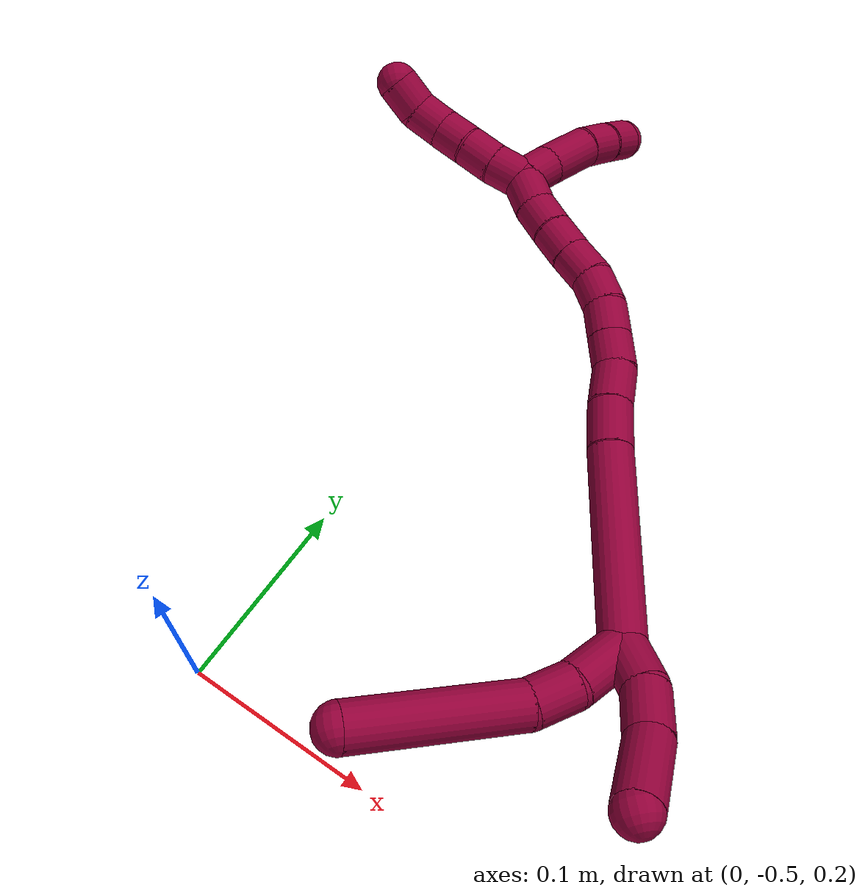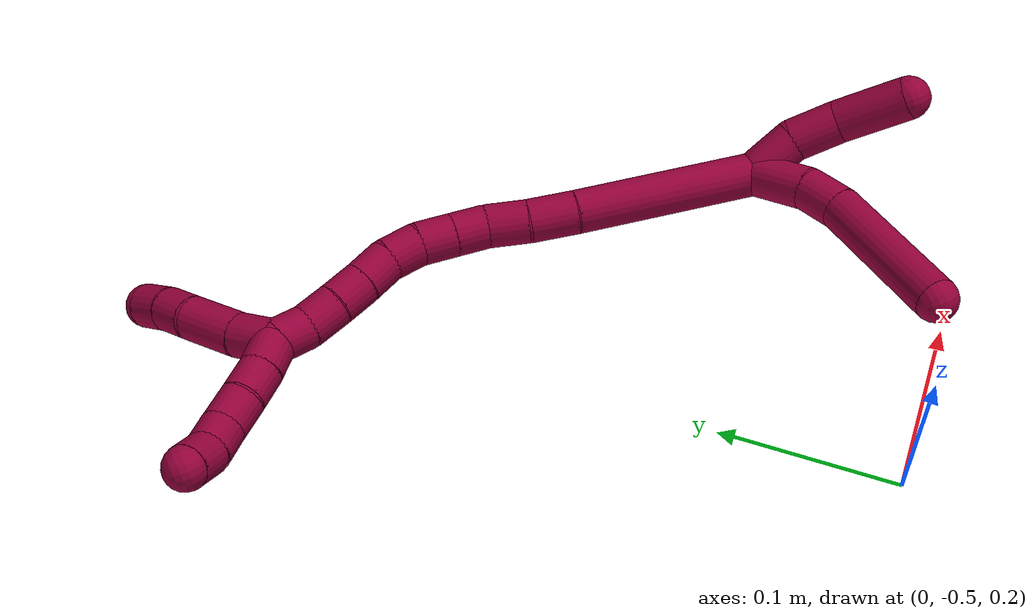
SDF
<sdf version="1.7">
 <world name="default">
  <model name="8">
   <static>0</static>
   <link name="8">
    <collision name="collision-cylinder-e_1_2_8">
     <pose>-0.006697 -0.014081 0.008747 1.01496 -0.383927 -0.215309</pose>
     <geometry><cylinder><radius>0.0125</radius><length>0.035757</length></cylinder></geometry>
     <surface>
      <friction><ode><mu>1.16</mu><mu2>1.16</mu2><slip1>0</slip1><slip2>0</slip2></ode></friction>
      <contact><ode><kp>1e+06</kp><kd>1</kd><max_vel>0</max_vel><min_depth>0.001</min_depth></ode></contact>
     </surface>
    </collision>
    <visual name="visual-cylinder-e_1_2_8">
     <pose>-0.006697 -0.014081 0.008747 1.01496 -0.383927 -0.215309</pose>
     <geometry><cylinder><radius>0.0125</radius><length>0.035757</length></cylinder></geometry>
     <material><ambient>0.584314 0 0.227451 1</ambient></material>
    </visual>
    <collision name="collision-cylinder-e_2_8_9">
     <pose>-0.017071 -0.039371 0.020916 1.27445 -0.304075 -0.225875</pose>
     <geometry><cylinder><radius>0.0125</radius><length>0.024564</length></cylinder></geometry>
     <surface>
      <friction><ode><mu>1.16</mu><mu2>1.16</mu2><slip1>0</slip1><slip2>0</slip2></ode></friction>
      <contact><ode><kp>1e+06</kp><kd>1</kd><max_vel>0</max_vel><min_depth>0.001</min_depth></ode></contact>
     </surface>
    </collision>
    <visual name="visual-cylinder-e_2_8_9">
     <pose>-0.017071 -0.039371 0.020916 1.27445 -0.304075 -0.225875</pose>
     <geometry><cylinder><radius>0.0125</radius><length>0.024564</length></cylinder></geometry>
     <material><ambient>0.584314 0 0.227451 1</ambient></material>
    </visual>
    <collision name="collision-cylinder-e_3_9_6">
     <pose>-0.03715 -0.092295 0.025465 1.54379 -0.374493 -0.364737</pose>
     <geometry><cylinder><radius>0.0125</radius><length>0.089678</length></cylinder></geometry>
     <surface>
      <friction><ode><mu>1.16</mu><mu2>1.16</mu2><slip1>0</slip1><slip2>0</slip2></ode></friction>
      <contact><ode><kp>1e+06</kp><kd>1</kd><max_vel>0</max_vel><min_depth>0.001</min_depth></ode></contact>
     </surface>
    </collision>
    <visual name="visual-cylinder-e_3_9_6">
     <pose>-0.03715 -0.092295 0.025465 1.54379 -0.374493 -0.364737</pose>
     <geometry><cylinder><radius>0.0125</radius><length>0.089678</length></cylinder></geometry>
     <material><ambient>0.584314 0 0.227451 1</ambient></material>
    </visual>
    <collision name="collision-cylinder-e_1_2_10">
     <pose>-0.005984 0.002184 0.013294 -0.162863 -0.417986 0.034615</pose>
     <geometry><cylinder><radius>0.0125</radius><length>0.029483</length></cylinder></geometry>
     <surface>
      <friction><ode><mu>1.16</mu><mu2>1.16</mu2><slip1>0</slip1><slip2>0</slip2></ode></friction>
      <contact><ode><kp>1e+06</kp><kd>1</kd><max_vel>0</max_vel><min_depth>0.001</min_depth></ode></contact>
     </surface>
    </collision>
    <visual name="visual-cylinder-e_1_2_10">
     <pose>-0.005984 0.002184 0.013294 -0.162863 -0.417986 0.034615</pose>
     <geometry><cylinder><radius>0.0125</radius><length>0.029483</length></cylinder></geometry>
     <material><ambient>0.584314 0 0.227451 1</ambient></material>
    </visual>
    <collision name="collision-cylinder-e_2_10_11">
     <pose>-0.017131 0.001822 0.039437 0.195723 -0.375485 -0.037298</pose>
     <geometry><cylinder><radius>0.0125</radius><length>0.028159</length></cylinder></geometry>
     <surface>
      <friction><ode><mu>1.16</mu><mu2>1.16</mu2><slip1>0</slip1><slip2>0</slip2></ode></friction>
      <contact><ode><kp>1e+06</kp><kd>1</kd><max_vel>0</max_vel><min_depth>0.001</min_depth></ode></contact>
     </surface>
    </collision>
    <visual name="visual-cylinder-e_2_10_11">
     <pose>-0.017131 0.001822 0.039437 0.195723 -0.375485 -0.037298</pose>
     <geometry><cylinder><radius>0.0125</radius><length>0.028159</length></cylinder></geometry>
     <material><ambient>0.584314 0 0.227451 1</ambient></material>
    </visual>
    <collision name="collision-cylinder-e_3_11_5">
     <pose>-0.033377 -0.007686 0.068937 0.395929 -0.55069 -0.113222</pose>
     <geometry><cylinder><radius>0.0125</radius><length>0.042357</length></cylinder></geometry>
     <surface>
      <friction><ode><mu>1.16</mu><mu2>1.16</mu2><slip1>0</slip1><slip2>0</slip2></ode></friction>
      <contact><ode><kp>1e+06</kp><kd>1</kd><max_vel>0</max_vel><min_depth>0.001</min_depth></ode></contact>
     </surface>
    </collision>
    <visual name="visual-cylinder-e_3_11_5">
     <pose>-0.033377 -0.007686 0.068937 0.395929 -0.55069 -0.113222</pose>
     <geometry><cylinder><radius>0.0125</radius><length>0.042357</length></cylinder></geometry>
     <material><ambient>0.584314 0 0.227451 1</ambient></material>
    </visual>
    <collision name="collision-cylinder-e_1_2_12">
     <pose>-0.001293 0.009656 -0.05262 -2.9601 -0.024165 0.264038</pose>
     <geometry><cylinder><radius>0.0125</radius><length>0.10703</length></cylinder></geometry>
     <surface>
      <friction><ode><mu>1.16</mu><mu2>1.16</mu2><slip1>0</slip1><slip2>0</slip2></ode></friction>
      <contact><ode><kp>1e+06</kp><kd>1</kd><max_vel>0</max_vel><min_depth>0.001</min_depth></ode></contact>
     </surface>
    </collision>
    <visual name="visual-cylinder-e_1_2_12">
     <pose>-0.001293 0.009656 -0.05262 -2.9601 -0.024165 0.264038</pose>
     <geometry><cylinder><radius>0.0125</radius><length>0.10703</length></cylinder></geometry>
     <material><ambient>0.584314 0 0.227451 1</ambient></material>
    </visual>
    <collision name="collision-cylinder-e_2_12_13">
     <pose>-0.002181 0.022485 -0.118456 -2.90598 0.029785 -0.250364</pose>
     <geometry><cylinder><radius>0.0125</radius><length>0.027193</length></cylinder></geometry>
     <surface>
      <friction><ode><mu>1.16</mu><mu2>1.16</mu2><slip1>0</slip1><slip2>0</slip2></ode></friction>
      <contact><ode><kp>1e+06</kp><kd>1</kd><max_vel>0</max_vel><min_depth>0.001</min_depth></ode></contact>
     </surface>
    </collision>
    <visual name="visual-cylinder-e_2_12_13">
     <pose>-0.002181 0.022485 -0.118456 -2.90598 0.029785 -0.250364</pose>
     <geometry><cylinder><radius>0.0125</radius><length>0.027193</length></cylinder></geometry>
     <material><ambient>0.584314 0 0.227451 1</ambient></material>
    </visual>
    <collision name="collision-cylinder-e_3_13_14">
     <pose>-0.000862 0.0297 -0.143075 -2.80098 0.07546 -0.432142</pose>
     <geometry><cylinder><radius>0.0125</radius><length>0.024268</length></cylinder></geometry>
     <surface>
      <friction><ode><mu>1.16</mu><mu2>1.16</mu2><slip1>0</slip1><slip2>0</slip2></ode></friction>
      <contact><ode><kp>1e+06</kp><kd>1</kd><max_vel>0</max_vel><min_depth>0.001</min_depth></ode></contact>
     </surface>
    </collision>
    <visual name="visual-cylinder-e_3_13_14">
     <pose>-0.000862 0.0297 -0.143075 -2.80098 0.07546 -0.432142</pose>
     <geometry><cylinder><radius>0.0125</radius><length>0.024268</length></cylinder></geometry>
     <material><ambient>0.584314 0 0.227451 1</ambient></material>
    </visual>
    <collision name="collision-cylinder-e_4_14_15">
     <pose>-0.000758 0.034753 -0.164453 -3.04052 -0.080797 1.34846</pose>
     <geometry><cylinder><radius>0.0125</radius><length>0.020113</length></cylinder></geometry>
     <surface>
      <friction><ode><mu>1.16</mu><mu2>1.16</mu2><slip1>0</slip1><slip2>0</slip2></ode></friction>
      <contact><ode><kp>1e+06</kp><kd>1</kd><max_vel>0</max_vel><min_depth>0.001</min_depth></ode></contact>
     </surface>
    </collision>
    <visual name="visual-cylinder-e_4_14_15">
     <pose>-0.000758 0.034753 -0.164453 -3.04052 -0.080797 1.34846</pose>
     <geometry><cylinder><radius>0.0125</radius><length>0.020113</length></cylinder></geometry>
     <material><ambient>0.584314 0 0.227451 1</ambient></material>
    </visual>
    <collision name="collision-cylinder-e_5_15_16">
     <pose>-0.002374 0.036797 -0.184581 -3.04033 -0.078627 1.32015</pose>
     <geometry><cylinder><radius>0.0125</radius><length>0.02048</length></cylinder></geometry>
     <surface>
      <friction><ode><mu>1.16</mu><mu2>1.16</mu2><slip1>0</slip1><slip2>0</slip2></ode></friction>
      <contact><ode><kp>1e+06</kp><kd>1</kd><max_vel>0</max_vel><min_depth>0.001</min_depth></ode></contact>
     </surface>
    </collision>
    <visual name="visual-cylinder-e_5_15_16">
     <pose>-0.002374 0.036797 -0.184581 -3.04033 -0.078627 1.32015</pose>
     <geometry><cylinder><radius>0.0125</radius><length>0.02048</length></cylinder></geometry>
     <material><ambient>0.584314 0 0.227451 1</ambient></material>
    </visual>
    <collision name="collision-cylinder-e_6_16_17">
     <pose>-0.00389 0.03646 -0.204709 3.00523 -0.070525 -0.953697</pose>
     <geometry><cylinder><radius>0.0125</radius><length>0.02018</length></cylinder></geometry>
     <surface>
      <friction><ode><mu>1.16</mu><mu2>1.16</mu2><slip1>0</slip1><slip2>0</slip2></ode></friction>
      <contact><ode><kp>1e+06</kp><kd>1</kd><max_vel>0</max_vel><min_depth>0.001</min_depth></ode></contact>
     </surface>
    </collision>
    <visual name="visual-cylinder-e_6_16_17">
     <pose>-0.00389 0.03646 -0.204709 3.00523 -0.070525 -0.953697</pose>
     <geometry><cylinder><radius>0.0125</radius><length>0.02018</length></cylinder></geometry>
     <material><ambient>0.584314 0 0.227451 1</ambient></material>
    </visual>
    <collision name="collision-cylinder-e_7_17_18">
     <pose>-0.005197 0.03116 -0.223943 2.74018 -0.059229 -0.289183</pose>
     <geometry><cylinder><radius>0.0125</radius><length>0.020161</length></cylinder></geometry>
     <surface>
      <friction><ode><mu>1.16</mu><mu2>1.16</mu2><slip1>0</slip1><slip2>0</slip2></ode></friction>
      <contact><ode><kp>1e+06</kp><kd>1</kd><max_vel>0</max_vel><min_depth>0.001</min_depth></ode></contact>
     </surface>
    </collision>
    <visual name="visual-cylinder-e_7_17_18">
     <pose>-0.005197 0.03116 -0.223943 2.74018 -0.059229 -0.289183</pose>
     <geometry><cylinder><radius>0.0125</radius><length>0.020161</length></cylinder></geometry>
     <material><ambient>0.584314 0 0.227451 1</ambient></material>
    </visual>
    <collision name="collision-cylinder-e_8_18_19">
     <pose>-0.006541 0.023759 -0.242568 2.78668 -0.074684 -0.410758</pose>
     <geometry><cylinder><radius>0.0125</radius><length>0.020025</length></cylinder></geometry>
     <surface>
      <friction><ode><mu>1.16</mu><mu2>1.16</mu2><slip1>0</slip1><slip2>0</slip2></ode></friction>
      <contact><ode><kp>1e+06</kp><kd>1</kd><max_vel>0</max_vel><min_depth>0.001</min_depth></ode></contact>
     </surface>
    </collision>
    <visual name="visual-cylinder-e_8_18_19">
     <pose>-0.006541 0.023759 -0.242568 2.78668 -0.074684 -0.410758</pose>
     <geometry><cylinder><radius>0.0125</radius><length>0.020025</length></cylinder></geometry>
     <material><ambient>0.584314 0 0.227451 1</ambient></material>
    </visual>
    <collision name="collision-cylinder-e_9_19_20">
     <pose>-0.007449 0.017236 -0.261731 2.83956 -0.015614 -0.102514</pose>
     <geometry><cylinder><radius>0.0125</radius><length>0.020532</length></cylinder></geometry>
     <surface>
      <friction><ode><mu>1.16</mu><mu2>1.16</mu2><slip1>0</slip1><slip2>0</slip2></ode></friction>
      <contact><ode><kp>1e+06</kp><kd>1</kd><max_vel>0</max_vel><min_depth>0.001</min_depth></ode></contact>
     </surface>
    </collision>
    <visual name="visual-cylinder-e_9_19_20">
     <pose>-0.007449 0.017236 -0.261731 2.83956 -0.015614 -0.102514</pose>
     <geometry><cylinder><radius>0.0125</radius><length>0.020532</length></cylinder></geometry>
     <material><ambient>0.584314 0 0.227451 1</ambient></material>
    </visual>
    <collision name="collision-cylinder-e_10_20_1">
     <pose>-0.009862 0.012507 -0.281138 2.9689 -0.227085 -1.84299</pose>
     <geometry><cylinder><radius>0.0125</radius><length>0.020018</length></cylinder></geometry>
     <surface>
      <friction><ode><mu>1.16</mu><mu2>1.16</mu2><slip1>0</slip1><slip2>0</slip2></ode></friction>
      <contact><ode><kp>1e+06</kp><kd>1</kd><max_vel>0</max_vel><min_depth>0.001</min_depth></ode></contact>
     </surface>
    </collision>
    <visual name="visual-cylinder-e_10_20_1">
     <pose>-0.009862 0.012507 -0.281138 2.9689 -0.227085 -1.84299</pose>
     <geometry><cylinder><radius>0.0125</radius><length>0.020018</length></cylinder></geometry>
     <material><ambient>0.584314 0 0.227451 1</ambient></material>
    </visual>
    <collision name="collision-cylinder-e_1_1_21">
     <pose>-0.00732 0.019205 -0.298096 -2.29122 0.406422 -0.854109</pose>
     <geometry><cylinder><radius>0.0125</radius><length>0.024261</length></cylinder></geometry>
     <surface>
      <friction><ode><mu>1.16</mu><mu2>1.16</mu2><slip1>0</slip1><slip2>0</slip2></ode></friction>
      <contact><ode><kp>1e+06</kp><kd>1</kd><max_vel>0</max_vel><min_depth>0.001</min_depth></ode></contact>
     </surface>
    </collision>
    <visual name="visual-cylinder-e_1_1_21">
     <pose>-0.00732 0.019205 -0.298096 -2.29122 0.406422 -0.854109</pose>
     <geometry><cylinder><radius>0.0125</radius><length>0.024261</length></cylinder></geometry>
     <material><ambient>0.584314 0 0.227451 1</ambient></material>
    </visual>
    <collision name="collision-cylinder-e_2_21_22">
     <pose>0.0032 0.041056 -0.31473 -2.17399 0.336478 -0.625269</pose>
     <geometry><cylinder><radius>0.0125</radius><length>0.034674</length></cylinder></geometry>
     <surface>
      <friction><ode><mu>1.16</mu><mu2>1.16</mu2><slip1>0</slip1><slip2>0</slip2></ode></friction>
      <contact><ode><kp>1e+06</kp><kd>1</kd><max_vel>0</max_vel><min_depth>0.001</min_depth></ode></contact>
     </surface>
    </collision>
    <visual name="visual-cylinder-e_2_21_22">
     <pose>0.0032 0.041056 -0.31473 -2.17399 0.336478 -0.625269</pose>
     <geometry><cylinder><radius>0.0125</radius><length>0.034674</length></cylinder></geometry>
     <material><ambient>0.584314 0 0.227451 1</ambient></material>
    </visual>
    <collision name="collision-cylinder-e_3_22_23">
     <pose>0.013949 0.062517 -0.328456 -2.07857 0.502878 -0.823819</pose>
     <geometry><cylinder><radius>0.0125</radius><length>0.020856</length></cylinder></geometry>
     <surface>
      <friction><ode><mu>1.16</mu><mu2>1.16</mu2><slip1>0</slip1><slip2>0</slip2></ode></friction>
      <contact><ode><kp>1e+06</kp><kd>1</kd><max_vel>0</max_vel><min_depth>0.001</min_depth></ode></contact>
     </surface>
    </collision>
    <visual name="visual-cylinder-e_3_22_23">
     <pose>0.013949 0.062517 -0.328456 -2.07857 0.502878 -0.823819</pose>
     <geometry><cylinder><radius>0.0125</radius><length>0.020856</length></cylinder></geometry>
     <material><ambient>0.584314 0 0.227451 1</ambient></material>
    </visual>
    <collision name="collision-cylinder-e_4_23_4">
     <pose>0.024794 0.077266 -0.337639 -2.18204 0.613656 -1.0939</pose>
     <geometry><cylinder><radius>0.0125</radius><length>0.020208</length></cylinder></geometry>
     <surface>
      <friction><ode><mu>1.16</mu><mu2>1.16</mu2><slip1>0</slip1><slip2>0</slip2></ode></friction>
      <contact><ode><kp>1e+06</kp><kd>1</kd><max_vel>0</max_vel><min_depth>0.001</min_depth></ode></contact>
     </surface>
    </collision>
    <visual name="visual-cylinder-e_4_23_4">
     <pose>0.024794 0.077266 -0.337639 -2.18204 0.613656 -1.0939</pose>
     <geometry><cylinder><radius>0.0125</radius><length>0.020208</length></cylinder></geometry>
     <material><ambient>0.584314 0 0.227451 1</ambient></material>
    </visual>
    <collision name="collision-cylinder-e_1_1_24">
     <pose>-0.013802 0.003638 -0.297484 2.32363 -0.169453 -0.387001</pose>
     <geometry><cylinder><radius>0.0125</radius><length>0.02</length></cylinder></geometry>
     <surface>
      <friction><ode><mu>1.16</mu><mu2>1.16</mu2><slip1>0</slip1><slip2>0</slip2></ode></friction>
      <contact><ode><kp>1e+06</kp><kd>1</kd><max_vel>0</max_vel><min_depth>0.001</min_depth></ode></contact>
     </surface>
    </collision>
    <visual name="visual-cylinder-e_1_1_24">
     <pose>-0.013802 0.003638 -0.297484 2.32363 -0.169453 -0.387001</pose>
     <geometry><cylinder><radius>0.0125</radius><length>0.02</length></cylinder></geometry>
     <material><ambient>0.584314 0 0.227451 1</ambient></material>
    </visual>
    <collision name="collision-cylinder-e_2_24_25">
     <pose>-0.017646 -0.010004 -0.311555 2.42021 -0.217421 -0.563318</pose>
     <geometry><cylinder><radius>0.0125</radius><length>0.02</length></cylinder></geometry>
     <surface>
      <friction><ode><mu>1.16</mu><mu2>1.16</mu2><slip1>0</slip1><slip2>0</slip2></ode></friction>
      <contact><ode><kp>1e+06</kp><kd>1</kd><max_vel>0</max_vel><min_depth>0.001</min_depth></ode></contact>
     </surface>
    </collision>
    <visual name="visual-cylinder-e_2_24_25">
     <pose>-0.017646 -0.010004 -0.311555 2.42021 -0.217421 -0.563318</pose>
     <geometry><cylinder><radius>0.0125</radius><length>0.02</length></cylinder></geometry>
     <material><ambient>0.584314 0 0.227451 1</ambient></material>
    </visual>
    <collision name="collision-cylinder-e_3_25_26">
     <pose>-0.020846 -0.02257 -0.326729 2.47912 -0.104555 -0.301984</pose>
     <geometry><cylinder><radius>0.0125</radius><length>0.02</length></cylinder></geometry>
     <surface>
      <friction><ode><mu>1.16</mu><mu2>1.16</mu2><slip1>0</slip1><slip2>0</slip2></ode></friction>
      <contact><ode><kp>1e+06</kp><kd>1</kd><max_vel>0</max_vel><min_depth>0.001</min_depth></ode></contact>
     </surface>
    </collision>
    <visual name="visual-cylinder-e_3_25_26">
     <pose>-0.020846 -0.02257 -0.326729 2.47912 -0.104555 -0.301984</pose>
     <geometry><cylinder><radius>0.0125</radius><length>0.02</length></cylinder></geometry>
     <material><ambient>0.584314 0 0.227451 1</ambient></material>
    </visual>
    <collision name="collision-cylinder-e_4_26_27">
     <pose>-0.025906 -0.035285 -0.340922 2.33707 -0.413277 -0.915605</pose>
     <geometry><cylinder><radius>0.0125</radius><length>0.02</length></cylinder></geometry>
     <surface>
      <friction><ode><mu>1.16</mu><mu2>1.16</mu2><slip1>0</slip1><slip2>0</slip2></ode></friction>
      <contact><ode><kp>1e+06</kp><kd>1</kd><max_vel>0</max_vel><min_depth>0.001</min_depth></ode></contact>
     </surface>
    </collision>
    <visual name="visual-cylinder-e_4_26_27">
     <pose>-0.025906 -0.035285 -0.340922 2.33707 -0.413277 -0.915605</pose>
     <geometry><cylinder><radius>0.0125</radius><length>0.02</length></cylinder></geometry>
     <material><ambient>0.584314 0 0.227451 1</ambient></material>
    </visual>
    <collision name="collision-cylinder-e_5_27_3">
     <pose>-0.036226 -0.046196 -0.353728 2.55272 -0.681978 -1.72728</pose>
     <geometry><cylinder><radius>0.0125</radius><length>0.02</length></cylinder></geometry>
     <surface>
      <friction><ode><mu>1.16</mu><mu2>1.16</mu2><slip1>0</slip1><slip2>0</slip2></ode></friction>
      <contact><ode><kp>1e+06</kp><kd>1</kd><max_vel>0</max_vel><min_depth>0.001</min_depth></ode></contact>
     </surface>
    </collision>
    <visual name="visual-cylinder-e_5_27_3">
     <pose>-0.036226 -0.046196 -0.353728 2.55272 -0.681978 -1.72728</pose>
     <geometry><cylinder><radius>0.0125</radius><length>0.02</length></cylinder></geometry>
     <material><ambient>0.584314 0 0.227451 1</ambient></material>
    </visual>
    <collision name="collision-sphere-3">
     <pose>-0.042529 -0.050507 -0.360184 0 -0 0</pose>
     <geometry><sphere><radius>0.0125</radius></sphere></geometry>
     <surface>
      <friction><ode><mu>1.16</mu><mu2>1.16</mu2><slip1>0</slip1><slip2>0</slip2></ode></friction>
      <contact><ode><kp>1e+06</kp><kd>1</kd><max_vel>0</max_vel><min_depth>0.001</min_depth></ode></contact>
     </surface>
    </collision>
    <visual name="visual-sphere-3">
     <pose>-0.042529 -0.050507 -0.360184 0 -0 0</pose>
     <geometry><sphere><radius>0.0125</radius></sphere></geometry>
     <material><ambient>0.584314 0 0.227451 1</ambient></material>
    </visual>
    <collision name="collision-sphere-27">
     <pose>-0.029922 -0.041884 -0.347272 0 -0 0</pose>
     <geometry><sphere><radius>0.0125</radius></sphere></geometry>
     <surface>
      <friction><ode><mu>1.16</mu><mu2>1.16</mu2><slip1>0</slip1><slip2>0</slip2></ode></friction>
      <contact><ode><kp>1e+06</kp><kd>1</kd><max_vel>0</max_vel><min_depth>0.001</min_depth></ode></contact>
     </surface>
    </collision>
    <visual name="visual-sphere-27">
     <pose>-0.029922 -0.041884 -0.347272 0 -0 0</pose>
     <geometry><sphere><radius>0.0125</radius></sphere></geometry>
     <material><ambient>0.584314 0 0.227451 1</ambient></material>
    </visual>
    <collision name="collision-sphere-26">
     <pose>-0.02189 -0.028687 -0.334571 0 -0 0</pose>
     <geometry><sphere><radius>0.0125</radius></sphere></geometry>
     <surface>
      <friction><ode><mu>1.16</mu><mu2>1.16</mu2><slip1>0</slip1><slip2>0</slip2></ode></friction>
      <contact><ode><kp>1e+06</kp><kd>1</kd><max_vel>0</max_vel><min_depth>0.001</min_depth></ode></contact>
     </surface>
    </collision>
    <visual name="visual-sphere-26">
     <pose>-0.02189 -0.028687 -0.334571 0 -0 0</pose>
     <geometry><sphere><radius>0.0125</radius></sphere></geometry>
     <material><ambient>0.584314 0 0.227451 1</ambient></material>
    </visual>
    <collision name="collision-sphere-25">
     <pose>-0.019803 -0.016453 -0.318888 0 -0 0</pose>
     <geometry><sphere><radius>0.0125</radius></sphere></geometry>
     <surface>
      <friction><ode><mu>1.16</mu><mu2>1.16</mu2><slip1>0</slip1><slip2>0</slip2></ode></friction>
      <contact><ode><kp>1e+06</kp><kd>1</kd><max_vel>0</max_vel><min_depth>0.001</min_depth></ode></contact>
     </surface>
    </collision>
    <visual name="visual-sphere-25">
     <pose>-0.019803 -0.016453 -0.318888 0 -0 0</pose>
     <geometry><sphere><radius>0.0125</radius></sphere></geometry>
     <material><ambient>0.584314 0 0.227451 1</ambient></material>
    </visual>
    <collision name="collision-sphere-24">
     <pose>-0.015489 -0.003555 -0.304223 0 -0 0</pose>
     <geometry><sphere><radius>0.0125</radius></sphere></geometry>
     <surface>
      <friction><ode><mu>1.16</mu><mu2>1.16</mu2><slip1>0</slip1><slip2>0</slip2></ode></friction>
      <contact><ode><kp>1e+06</kp><kd>1</kd><max_vel>0</max_vel><min_depth>0.001</min_depth></ode></contact>
     </surface>
    </collision>
    <visual name="visual-sphere-24">
     <pose>-0.015489 -0.003555 -0.304223 0 -0 0</pose>
     <geometry><sphere><radius>0.0125</radius></sphere></geometry>
     <material><ambient>0.584314 0 0.227451 1</ambient></material>
    </visual>
    <collision name="collision-sphere-4">
     <pose>0.030612 0.084031 -0.34238 0 -0 0</pose>
     <geometry><sphere><radius>0.0125</radius></sphere></geometry>
     <surface>
      <friction><ode><mu>1.16</mu><mu2>1.16</mu2><slip1>0</slip1><slip2>0</slip2></ode></friction>
      <contact><ode><kp>1e+06</kp><kd>1</kd><max_vel>0</max_vel><min_depth>0.001</min_depth></ode></contact>
     </surface>
    </collision>
    <visual name="visual-sphere-4">
     <pose>0.030612 0.084031 -0.34238 0 -0 0</pose>
     <geometry><sphere><radius>0.0125</radius></sphere></geometry>
     <material><ambient>0.584314 0 0.227451 1</ambient></material>
    </visual>
    <collision name="collision-sphere-23">
     <pose>0.018975 0.070501 -0.332899 0 -0 0</pose>
     <geometry><sphere><radius>0.0125</radius></sphere></geometry>
     <surface>
      <friction><ode><mu>1.16</mu><mu2>1.16</mu2><slip1>0</slip1><slip2>0</slip2></ode></friction>
      <contact><ode><kp>1e+06</kp><kd>1</kd><max_vel>0</max_vel><min_depth>0.001</min_depth></ode></contact>
     </surface>
    </collision>
    <visual name="visual-sphere-23">
     <pose>0.018975 0.070501 -0.332899 0 -0 0</pose>
     <geometry><sphere><radius>0.0125</radius></sphere></geometry>
     <material><ambient>0.584314 0 0.227451 1</ambient></material>
    </visual>
    <collision name="collision-sphere-22">
     <pose>0.008924 0.054533 -0.324013 0 -0 0</pose>
     <geometry><sphere><radius>0.0125</radius></sphere></geometry>
     <surface>
      <friction><ode><mu>1.16</mu><mu2>1.16</mu2><slip1>0</slip1><slip2>0</slip2></ode></friction>
      <contact><ode><kp>1e+06</kp><kd>1</kd><max_vel>0</max_vel><min_depth>0.001</min_depth></ode></contact>
     </surface>
    </collision>
    <visual name="visual-sphere-22">
     <pose>0.008924 0.054533 -0.324013 0 -0 0</pose>
     <geometry><sphere><radius>0.0125</radius></sphere></geometry>
     <material><ambient>0.584314 0 0.227451 1</ambient></material>
    </visual>
    <collision name="collision-sphere-21">
     <pose>-0.002525 0.027579 -0.305446 0 -0 0</pose>
     <geometry><sphere><radius>0.0125</radius></sphere></geometry>
     <surface>
      <friction><ode><mu>1.16</mu><mu2>1.16</mu2><slip1>0</slip1><slip2>0</slip2></ode></friction>
      <contact><ode><kp>1e+06</kp><kd>1</kd><max_vel>0</max_vel><min_depth>0.001</min_depth></ode></contact>
     </surface>
    </collision>
    <visual name="visual-sphere-21">
     <pose>-0.002525 0.027579 -0.305446 0 -0 0</pose>
     <geometry><sphere><radius>0.0125</radius></sphere></geometry>
     <material><ambient>0.584314 0 0.227451 1</ambient></material>
    </visual>
    <collision name="collision-sphere-1">
     <pose>-0.012116 0.010831 -0.290745 0 -0 0</pose>
     <geometry><sphere><radius>0.0125</radius></sphere></geometry>
     <surface>
      <friction><ode><mu>1.16</mu><mu2>1.16</mu2><slip1>0</slip1><slip2>0</slip2></ode></friction>
      <contact><ode><kp>1e+06</kp><kd>1</kd><max_vel>0</max_vel><min_depth>0.001</min_depth></ode></contact>
     </surface>
    </collision>
    <visual name="visual-sphere-1">
     <pose>-0.012116 0.010831 -0.290745 0 -0 0</pose>
     <geometry><sphere><radius>0.0125</radius></sphere></geometry>
     <material><ambient>0.584314 0 0.227451 1</ambient></material>
    </visual>
    <collision name="collision-sphere-11">
     <pose>-0.022295 -0.000726 0.052286 0 -0 0</pose>
     <geometry><sphere><radius>0.0125</radius></sphere></geometry>
     <surface>
      <friction><ode><mu>1.16</mu><mu2>1.16</mu2><slip1>0</slip1><slip2>0</slip2></ode></friction>
      <contact><ode><kp>1e+06</kp><kd>1</kd><max_vel>0</max_vel><min_depth>0.001</min_depth></ode></contact>
     </surface>
    </collision>
    <visual name="visual-sphere-11">
     <pose>-0.022295 -0.000726 0.052286 0 -0 0</pose>
     <geometry><sphere><radius>0.0125</radius></sphere></geometry>
     <material><ambient>0.584314 0 0.227451 1</ambient></material>
    </visual>
    <collision name="collision-sphere-10">
     <pose>-0.011968 0.004369 0.026589 0 -0 0</pose>
     <geometry><sphere><radius>0.0125</radius></sphere></geometry>
     <surface>
      <friction><ode><mu>1.16</mu><mu2>1.16</mu2><slip1>0</slip1><slip2>0</slip2></ode></friction>
      <contact><ode><kp>1e+06</kp><kd>1</kd><max_vel>0</max_vel><min_depth>0.001</min_depth></ode></contact>
     </surface>
    </collision>
    <visual name="visual-sphere-10">
     <pose>-0.011968 0.004369 0.026589 0 -0 0</pose>
     <geometry><sphere><radius>0.0125</radius></sphere></geometry>
     <material><ambient>0.584314 0 0.227451 1</ambient></material>
    </visual>
    <collision name="collision-sphere-6">
     <pose>-0.053553 -0.134012 0.026592 0 -0 0</pose>
     <geometry><sphere><radius>0.0125</radius></sphere></geometry>
     <surface>
      <friction><ode><mu>1.16</mu><mu2>1.16</mu2><slip1>0</slip1><slip2>0</slip2></ode></friction>
      <contact><ode><kp>1e+06</kp><kd>1</kd><max_vel>0</max_vel><min_depth>0.001</min_depth></ode></contact>
     </surface>
    </collision>
    <visual name="visual-sphere-6">
     <pose>-0.053553 -0.134012 0.026592 0 -0 0</pose>
     <geometry><sphere><radius>0.0125</radius></sphere></geometry>
     <material><ambient>0.584314 0 0.227451 1</ambient></material>
    </visual>
    <collision name="collision-sphere-9">
     <pose>-0.020748 -0.050579 0.024338 0 -0 0</pose>
     <geometry><sphere><radius>0.0125</radius></sphere></geometry>
     <surface>
      <friction><ode><mu>1.16</mu><mu2>1.16</mu2><slip1>0</slip1><slip2>0</slip2></ode></friction>
      <contact><ode><kp>1e+06</kp><kd>1</kd><max_vel>0</max_vel><min_depth>0.001</min_depth></ode></contact>
     </surface>
    </collision>
    <visual name="visual-sphere-9">
     <pose>-0.020748 -0.050579 0.024338 0 -0 0</pose>
     <geometry><sphere><radius>0.0125</radius></sphere></geometry>
     <material><ambient>0.584314 0 0.227451 1</ambient></material>
    </visual>
    <collision name="collision-sphere-2">
     <geometry><sphere><radius>0.0125</radius></sphere></geometry>
     <surface>
      <friction><ode><mu>1.16</mu><mu2>1.16</mu2><slip1>0</slip1><slip2>0</slip2></ode></friction>
      <contact><ode><kp>1e+06</kp><kd>1</kd><max_vel>0</max_vel><min_depth>0.001</min_depth></ode></contact>
     </surface>
    </collision>
    <visual name="visual-sphere-2">
     <geometry><sphere><radius>0.0125</radius></sphere></geometry>
     <material><ambient>0.584314 0 0.227451 1</ambient></material>
    </visual>
    <collision name="collision-sphere-19">
     <pose>-0.007288 0.020289 -0.251931 0 -0 0</pose>
     <geometry><sphere><radius>0.0125</radius></sphere></geometry>
     <surface>
      <friction><ode><mu>1.16</mu><mu2>1.16</mu2><slip1>0</slip1><slip2>0</slip2></ode></friction>
      <contact><ode><kp>1e+06</kp><kd>1</kd><max_vel>0</max_vel><min_depth>0.001</min_depth></ode></contact>
     </surface>
    </collision>
    <visual name="visual-sphere-19">
     <pose>-0.007288 0.020289 -0.251931 0 -0 0</pose>
     <geometry><sphere><radius>0.0125</radius></sphere></geometry>
     <material><ambient>0.584314 0 0.227451 1</ambient></material>
    </visual>
    <collision name="collision-sphere-8">
     <pose>-0.013393 -0.028163 0.017494 0 -0 0</pose>
     <geometry><sphere><radius>0.0125</radius></sphere></geometry>
     <surface>
      <friction><ode><mu>1.16</mu><mu2>1.16</mu2><slip1>0</slip1><slip2>0</slip2></ode></friction>
      <contact><ode><kp>1e+06</kp><kd>1</kd><max_vel>0</max_vel><min_depth>0.001</min_depth></ode></contact>
     </surface>
    </collision>
    <visual name="visual-sphere-8">
     <pose>-0.013393 -0.028163 0.017494 0 -0 0</pose>
     <geometry><sphere><radius>0.0125</radius></sphere></geometry>
     <material><ambient>0.584314 0 0.227451 1</ambient></material>
    </visual>
    <collision name="collision-sphere-5">
     <pose>-0.044459 -0.014646 0.085589 0 -0 0</pose>
     <geometry><sphere><radius>0.0125</radius></sphere></geometry>
     <surface>
      <friction><ode><mu>1.16</mu><mu2>1.16</mu2><slip1>0</slip1><slip2>0</slip2></ode></friction>
      <contact><ode><kp>1e+06</kp><kd>1</kd><max_vel>0</max_vel><min_depth>0.001</min_depth></ode></contact>
     </surface>
    </collision>
    <visual name="visual-sphere-5">
     <pose>-0.044459 -0.014646 0.085589 0 -0 0</pose>
     <geometry><sphere><radius>0.0125</radius></sphere></geometry>
     <material><ambient>0.584314 0 0.227451 1</ambient></material>
    </visual>
    <collision name="collision-sphere-12">
     <pose>-0.002586 0.019313 -0.105241 0 -0 0</pose>
     <geometry><sphere><radius>0.0125</radius></sphere></geometry>
     <surface>
      <friction><ode><mu>1.16</mu><mu2>1.16</mu2><slip1>0</slip1><slip2>0</slip2></ode></friction>
      <contact><ode><kp>1e+06</kp><kd>1</kd><max_vel>0</max_vel><min_depth>0.001</min_depth></ode></contact>
     </surface>
    </collision>
    <visual name="visual-sphere-12">
     <pose>-0.002586 0.019313 -0.105241 0 -0 0</pose>
     <geometry><sphere><radius>0.0125</radius></sphere></geometry>
     <material><ambient>0.584314 0 0.227451 1</ambient></material>
    </visual>
    <collision name="collision-sphere-13">
     <pose>-0.001776 0.025658 -0.131671 0 -0 0</pose>
     <geometry><sphere><radius>0.0125</radius></sphere></geometry>
     <surface>
      <friction><ode><mu>1.16</mu><mu2>1.16</mu2><slip1>0</slip1><slip2>0</slip2></ode></friction>
      <contact><ode><kp>1e+06</kp><kd>1</kd><max_vel>0</max_vel><min_depth>0.001</min_depth></ode></contact>
     </surface>
    </collision>
    <visual name="visual-sphere-13">
     <pose>-0.001776 0.025658 -0.131671 0 -0 0</pose>
     <geometry><sphere><radius>0.0125</radius></sphere></geometry>
     <material><ambient>0.584314 0 0.227451 1</ambient></material>
    </visual>
    <collision name="collision-sphere-14">
     <pose>5.3e-05 0.033742 -0.15448 0 -0 0</pose>
     <geometry><sphere><radius>0.0125</radius></sphere></geometry>
     <surface>
      <friction><ode><mu>1.16</mu><mu2>1.16</mu2><slip1>0</slip1><slip2>0</slip2></ode></friction>
      <contact><ode><kp>1e+06</kp><kd>1</kd><max_vel>0</max_vel><min_depth>0.001</min_depth></ode></contact>
     </surface>
    </collision>
    <visual name="visual-sphere-14">
     <pose>5.3e-05 0.033742 -0.15448 0 -0 0</pose>
     <geometry><sphere><radius>0.0125</radius></sphere></geometry>
     <material><ambient>0.584314 0 0.227451 1</ambient></material>
    </visual>
    <collision name="collision-sphere-15">
     <pose>-0.00157 0.035765 -0.174425 0 -0 0</pose>
     <geometry><sphere><radius>0.0125</radius></sphere></geometry>
     <surface>
      <friction><ode><mu>1.16</mu><mu2>1.16</mu2><slip1>0</slip1><slip2>0</slip2></ode></friction>
      <contact><ode><kp>1e+06</kp><kd>1</kd><max_vel>0</max_vel><min_depth>0.001</min_depth></ode></contact>
     </surface>
    </collision>
    <visual name="visual-sphere-15">
     <pose>-0.00157 0.035765 -0.174425 0 -0 0</pose>
     <geometry><sphere><radius>0.0125</radius></sphere></geometry>
     <material><ambient>0.584314 0 0.227451 1</ambient></material>
    </visual>
    <collision name="collision-sphere-16">
     <pose>-0.003179 0.037829 -0.194737 0 -0 0</pose>
     <geometry><sphere><radius>0.0125</radius></sphere></geometry>
     <surface>
      <friction><ode><mu>1.16</mu><mu2>1.16</mu2><slip1>0</slip1><slip2>0</slip2></ode></friction>
      <contact><ode><kp>1e+06</kp><kd>1</kd><max_vel>0</max_vel><min_depth>0.001</min_depth></ode></contact>
     </surface>
    </collision>
    <visual name="visual-sphere-16">
     <pose>-0.003179 0.037829 -0.194737 0 -0 0</pose>
     <geometry><sphere><radius>0.0125</radius></sphere></geometry>
     <material><ambient>0.584314 0 0.227451 1</ambient></material>
    </visual>
    <collision name="collision-sphere-17">
     <pose>-0.004601 0.035092 -0.21468 0 -0 0</pose>
     <geometry><sphere><radius>0.0125</radius></sphere></geometry>
     <surface>
      <friction><ode><mu>1.16</mu><mu2>1.16</mu2><slip1>0</slip1><slip2>0</slip2></ode></friction>
      <contact><ode><kp>1e+06</kp><kd>1</kd><max_vel>0</max_vel><min_depth>0.001</min_depth></ode></contact>
     </surface>
    </collision>
    <visual name="visual-sphere-17">
     <pose>-0.004601 0.035092 -0.21468 0 -0 0</pose>
     <geometry><sphere><radius>0.0125</radius></sphere></geometry>
     <material><ambient>0.584314 0 0.227451 1</ambient></material>
    </visual>
    <collision name="collision-sphere-18">
     <pose>-0.005794 0.027229 -0.233206 0 -0 0</pose>
     <geometry><sphere><radius>0.0125</radius></sphere></geometry>
     <surface>
      <friction><ode><mu>1.16</mu><mu2>1.16</mu2><slip1>0</slip1><slip2>0</slip2></ode></friction>
      <contact><ode><kp>1e+06</kp><kd>1</kd><max_vel>0</max_vel><min_depth>0.001</min_depth></ode></contact>
     </surface>
    </collision>
    <visual name="visual-sphere-18">
     <pose>-0.005794 0.027229 -0.233206 0 -0 0</pose>
     <geometry><sphere><radius>0.0125</radius></sphere></geometry>
     <material><ambient>0.584314 0 0.227451 1</ambient></material>
    </visual>
    <collision name="collision-sphere-20">
     <pose>-0.007609 0.014182 -0.271531 0 -0 0</pose>
     <geometry><sphere><radius>0.0125</radius></sphere></geometry>
     <surface>
      <friction><ode><mu>1.16</mu><mu2>1.16</mu2><slip1>0</slip1><slip2>0</slip2></ode></friction>
      <contact><ode><kp>1e+06</kp><kd>1</kd><max_vel>0</max_vel><min_depth>0.001</min_depth></ode></contact>
     </surface>
    </collision>
    <visual name="visual-sphere-20">
     <pose>-0.007609 0.014182 -0.271531 0 -0 0</pose>
     <geometry><sphere><radius>0.0125</radius></sphere></geometry>
     <material><ambient>0.584314 0 0.227451 1</ambient></material>
    </visual>
    <inertial>
     <pose>-0.011431 -0.001532 -0.134417 0 -0 0</pose>
     <mass>0.75</mass>
     <inertia>
      <ixx>0.000182</ixx>
      <ixy>0</ixy>
      <ixz>0</ixz>
      <iyy>-0.000105</iyy>
      <iyz>0</iyz>
      <izz>5.7e-05</izz>
     </inertia>
    </inertial>
   </link>
   <pose>0.165896 -0.375555 0.210207 1.39224 1.46163 0.601329</pose>
  </model>
 </world>
</sdf>
